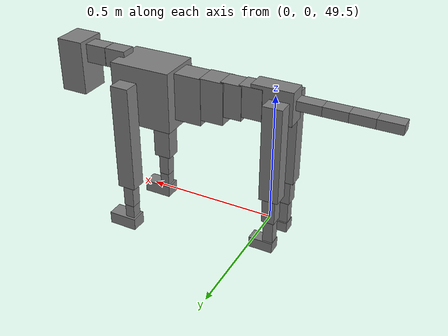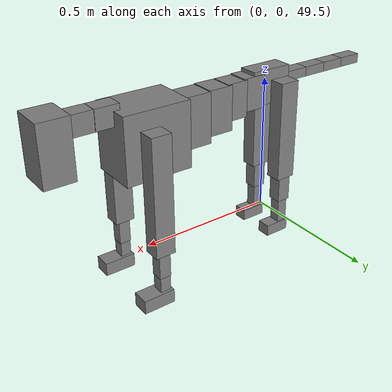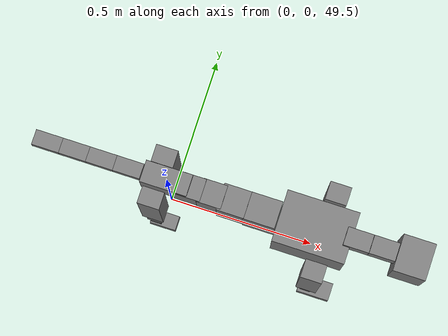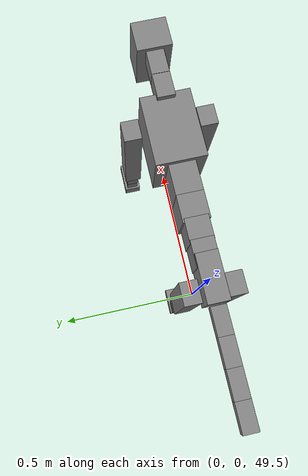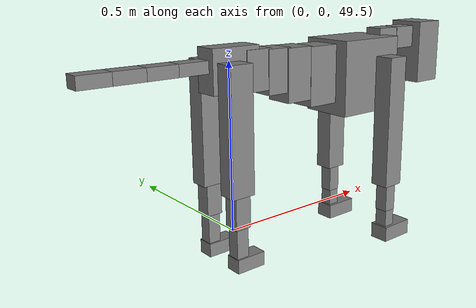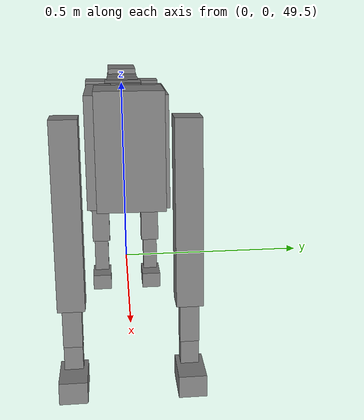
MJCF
<mujoco model="dog">

    <default>
        <joint armature="0.02" stiffness="1" damping="0.2" limited="true"/>
        <geom condim="3" friction="1 0.05 0.05" margin="0.01"/>
        <motor ctrllimited="true" ctrlrange="-1.0 1.0" forcelimited="true" gear="50"/>
    </default>

    <compiler inertiafromgeom="true" angle="radian"/>

    <option timestep="0.016" iterations="50" tolerance="1e-10" solver="Newton" jacobian="dense" cone="pyramidal"/>

    <size nconmax="20000" njmax="60000" nstack="5000000"/>
    <visual>
        <map force="0.1" zfar="30"/>
        <rgba haze="0.15 0.25 0.35 1"/>
        <quality shadowsize="2048"/>
        <global offwidth="800" offheight="800"/>
    </visual>

    <asset>
        <texture type="skybox" builtin="gradient" rgb1="0.3 0.5 0.7" rgb2="0 0 0" width="512" height="512"/>
        <texture name="texplane" type="2d" builtin="checker" rgb1=".2 .3 .4" rgb2=".1 0.15 0.2" width="512" height="512"
                 mark="cross" markrgb=".8 .8 .8"/>
        <texture name="texgeom" type="cube" builtin="flat" mark="cross" width="127" height="1278" rgb1="0.8 0.6 0.4"
                 rgb2="0.8 0.6 0.4" markrgb="1 1 1" random="0.01"/>

        <material name="matplane" reflectance="0.3" texture="texplane" texrepeat="1 1" texuniform="true"/>
        <material name="matgeom" texture="texgeom" texuniform="true" rgba="0.8 0.6 .4 1"/>
    </asset>

    <worldbody>
        <geom name="floor" pos="0 0 0" size="0 0 .25" type="plane" material="matplane" condim="3"/>

        <light directional="false" diffuse=".2 .2 .2" specular="0 0 0" pos="0 0 5" dir="0 0 -1" castshadow="false"/>
        <light mode="targetbodycom" target="torso" directional="false" diffuse=".8 .8 .8" specular="0.3 0.3 0.3"
               pos="0 0 4.0" dir="0 0 -1"/>

        <body name="root" pos="0 0 50">
            <freejoint name="root_1"/>
            <geom type="box" pos="0 0 -0.02" size="0.0774  0.0358  0.063" density="2030"/>

            <body name="spine1" pos="0.054 0 0">
                <joint name="spine1_y" axis="0 1 0" range="0 0.7" limited="true"/>
                <geom type="box" pos="0.02375 0 -0.03" size="0.04375  0.0375  0.05985" density="2030"/>

                <body name="spine2" pos="0.0612 0 0">
                    <joint name="spine2_y" axis="0 1 0" range="-0.15 0.15" limited="true"/>
                    <geom type="box" pos="0.03555  0  -0.04" size="0.04055  0.039  0.06615" density="2030"/>

                    <body name="spine3" pos="0.0730 0 0">
                        <joint name="spine3_y" axis="0 1 0" range="-0.15 0.15" limited="true"/>
                        <geom type="box" pos="0.03555  0  -0.057" size="0.04555  0.0445  0.081" density="2030"/>

                        <body name="spine4" pos="0.0780 0 0">
                            <joint name="spine4_y" axis="0 1 0" range="-0.15 0.15" limited="true"/>
                            <geom type="box" pos="0.05265  0  -0.07" size="0.05265  0.045  0.09135" density="2030"/>

                            <body name="torso" pos="0.1082 0 0">
                                <joint name="torso_y" axis="0 1 0" range="-0.15 0.15" limited="true"/>
                                <geom type="box" pos="0.11925  0  -0.085" size="0.11925  0.085  0.11745"
                                      density="2030"/>

                                <body name="neck1" pos="0.2160  0   0.0180">
                                    <joint name="neck1_y" axis="0 1 0" range="-1.2  -1" limited="true"/>
                                    <geom type="box" pos="0.0423  0  0" size="0.0423  0.03  0.036" density="2325"/>

                                    <body name="neck2" pos="0.0853  0  0">
                                        <joint name="neck2_y" axis="0 1 0" range="0.1  0" limited="true"/>
                                        <geom type="box" pos="0.0423  0  0" size="0.0423  0.03  0.036" density="2325"/>

                                        <body name="head" pos="0.0853  0  0">
                                            <joint name="head_y" axis="0 1 0" range="-0.3  -0.2" limited="true"/>
                                            <geom type="box" pos="0.0531  0  -0.055" size="0.0531  0.06  0.1044"
                                                  density="4030"/>

                                        </body>
                                    </body>
                                </body>

                                <body name="front_shoulder" pos="0.156  0   -0.0480">
                                    <joint name="front_shoulder_y" axis="0 1 0" range="-1 1.5" limited="true"/>
                                    <geom type="box" pos="0 0.13 -0.1837" size="0.0354  0.0302  0.2104" density="1158"/>
                                    <geom type="box" pos="0 -0.13 -0.1837" size="0.0354  0.0302  0.2104"
                                          density="1158"/>

                                    <body name="front_elbow" pos="0  0  -0.3674">
                                        <joint name="front_elbow_y" axis="0 1 0" range="-2 0" limited="true"/>
                                        <geom type="box" pos="0 0.13 -0.0578" size="0.0208  0.0213  0.0578"
                                              density="1081"/>
                                        <geom type="box" pos="0 -0.13 -0.0578" size="0.0208  0.0213  0.0578"
                                              density="1081"/>

                                        <body name="front_wrist" pos="0  0  -0.1156">
                                            <joint name="front_wrist_y" axis="0 1 0" range="-0.2 0" limited="true"/>
                                            <geom type="box" pos="0 0.13 -0.0344" size="0.0187  0.0208  0.0476"
                                                  density="1664"/>
                                            <geom type="box" pos="0 -0.13 -0.0344" size="0.0187  0.0208  0.0476"
                                                  density="1664"/>

                                            <body name="front_finger_end" pos="0  0  -0.0689">
                                                <joint name="front_finger_y" axis="0 1 0" range="-0.4 1"
                                                       limited="true"/>
                                                <geom type="box" pos="0.0309  0.13  -0.0095"
                                                      size="0.0566  0.0309  0.0245" density="1515"/>
                                                <geom type="box" pos="0.0309  -0.13  -0.0095"
                                                      size="0.0566  0.0309  0.0245" density="1515"/>

                                            </body>

                                        </body>
                                    </body>
                                </body>

                            </body>
                        </body>
                    </body>
                </body>
            </body>

            <body name="back_hip" pos="-0.03 0 -0.018">
                <joint name="back_hip_y" axis="0 1 0" range="-1.5 0.3" limited="true"/>
                <geom type="box" pos="0 0.07 -0.1608" size="0.0366  0.0287  0.1836" density="1154"/>
                <geom type="box" pos="0 -0.07 -0.1608" size="0.0366  0.0287  0.1836" density="1154"/>

                <body name="back_knee" pos="0  0  -0.3215">
                    <joint name="back_knee_y" axis="0 1 0" range="0 2.8" limited="true"/>
                    <geom type="box" pos="0 0.07 -0.0510" size="0.0247  0.0243  0.0666" density="1227"/>
                    <geom type="box" pos="0 -0.07 -0.0510" size="0.0247  0.0243  0.0666" density="1227"/>

                    <body name="back_ankle" pos="0  0  -0.1021">
                        <joint name="back_ankle_y" axis="0 1 0" range="-2.2 0" limited="true"/>
                        <geom type="box" pos="0 0.07 -0.0594" size="0.0193  0.0193  0.0707" density="1284"/>
                        <geom type="box" pos="0 -0.07 -0.0594" size="0.0193  0.0193  0.0707" density="1284"/>

                        <body name="back_toe_end" pos="0  0  -0.1188">
                            <joint name="back_toe_y" axis="0 1 0" range="-0.4 1" limited="true"/>
                            <geom type="box" pos="0.0252  0.07  -0.0057" size="0.0462  0.0252  0.0207" density="1515"/>
                            <geom type="box" pos="0.0252  -0.07  -0.0057" size="0.0462  0.0252  0.0207" density="1515"/>

                        </body>
                    </body>
                </body>
            </body>

            <body name="tail1" pos="-0.074 0 -0.006">
                <joint name="tail1_y" axis="0 1 0" range="-0.2 0.2" limited="true"/>
                <geom type="box" pos="-0.0536  0  0" size="0.045  0.025  0.0175" density="1587"/>

                <body name="tail2" pos="-0.09 0 0">
                    <joint name="tail2_y" axis="0 1 0" range="-0.2 0.2" limited="true"/>
                    <geom type="box" pos="-0.0536  0  0" size="0.045  0.025  0.0175" density="1587"/>

                    <body name="tail3" pos="-0.09 0 0">
                        <joint name="tail3_y" axis="0 1 0" range="-0.2 0.2" limited="true"/>
                        <geom type="box" pos="-0.0536  0  0" size="0.045  0.025  0.0175" density="1587"/>

                        <body name="tail4" pos="-0.09 0 0">
                            <joint name="tail4_y" axis="0 1 0" range="-0.2 0.2" limited="true"/>
                            <geom type="box" pos="-0.0536  0  0" size="0.045  0.025  0.0175" density="1587"/>

                        </body>
                    </body>
                </body>
            </body>
        </body>
    </worldbody>

    <actuator>
        <motor joint="spine1_y" forcerange="-150 150     "/>
        <motor joint="spine2_y" forcerange="-150 150     "/>
        <motor joint="spine3_y" forcerange="-150 150     "/>
        <motor joint="spine4_y" forcerange="-150 150     "/>
        <motor joint="torso_y" forcerange="-150 150     "/>
        <motor joint="neck1_y" forcerange="-100 100       "/>
        <motor joint="neck2_y" forcerange="-100 100       "/>
        <motor joint="head_y" forcerange="-150 150       "/>
        <motor joint="front_shoulder_y" forcerange="-198.91 102.67"/>
        <motor joint="front_elbow_y" forcerange="-137.45 117.48"/>
        <motor joint="front_wrist_y" forcerange="-51.86 114.57"/>
        <motor joint="front_finger_y" forcerange="-84.70 40.04"/>
        <motor joint="back_hip_y" forcerange="-281.83 301.12"/>
        <motor joint="back_knee_y" forcerange="-327.65 225.85"/>
        <motor joint="back_angle_y" forcerange="-69.13 139.58"/>
        <motor joint="back_toe_y" forcerange="-88.15 33.50"/>
        <motor joint="tail1_y" forcerange="-50 50     "/>
        <motor joint="tail2_y" forcerange="-50 50     "/>
        <motor joint="tail3_y" forcerange="-50 50     "/>
        <motor joint="tail4_y" forcerange="-50 50     "/>
    </actuator>
</mujoco>
